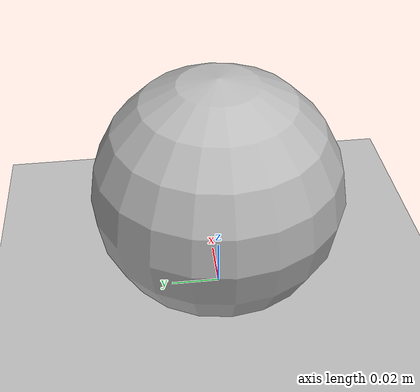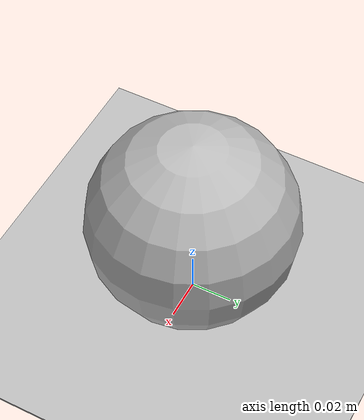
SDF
<?xml version='1.0'?>
<sdf version='1.6'>
  <model name='box_vs_plane'>
    <!-- A link to model the ground. Inertia values are not particularly
         important since the ground does not move. -->
    <link name='ground'>
      <inertial>
        <mass>1.0</mass>
        <inertia>
          <ixx>1.0</ixx>
          <ixy>0</ixy>
          <ixz>0</ixz>
          <iyy>1.0</iyy>
          <iyz>0</iyz>
          <izz>1.0</izz>
        </inertia>
      </inertial>
      <visual name='visual'>
        <geometry>
          <plane>
            <normal>0.0 0.0 1.0</normal>
          </plane>
        </geometry>
      </visual>

      <collision name='collision'>
        <geometry>
          <plane>
            <normal>0.0 0.0 1.0</normal>
          </plane>
        </geometry>

        <surface>
          <friction>
            <ode>
              <mu>1.0</mu>
              <mu2>1.0</mu2>
            </ode>
          </friction>
        </surface>
      </collision>
    </link>

    <joint name='weld_ground' type='fixed'>
      <parent>world</parent>
      <child>ground</child>
    </joint>

    <!-- The model for a solid sphere of uniform density 10 cm in diameter. -->
    <link name='sphere'>
      <pose>0 0 0.05 0 0 0</pose>
      <inertial>
        <mass>0.1</mass>
        <inertia>
          <!-- Ixx = Iyy = Izz = 2/5 * m * R^2 -->
          <ixx>1.0e-4</ixx>
          <ixy>0</ixy>
          <ixz>0</ixz>
          <iyy>1.0e-4</iyy>
          <iyz>0</iyz>
          <izz>1.0e-4</izz>
        </inertia>
      </inertial>
      <visual name='visual'>
        <geometry>
          <sphere>
            <radius>0.05</radius>
          </sphere>
        </geometry>
      </visual>

      <collision name='collision'>
        <geometry>
          <sphere>
            <radius>0.05</radius>
          </sphere>
        </geometry>

        <surface>
          <friction>
            <ode>
              <mu>1.0</mu>
              <mu2>1.0</mu2>
            </ode>
          </friction>
        </surface>
      </collision>
    </link>

  </model>
</sdf>
